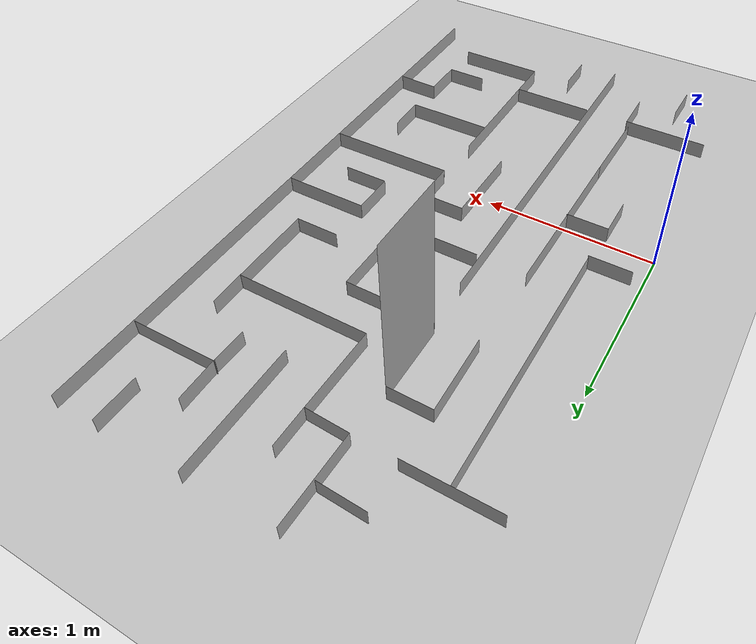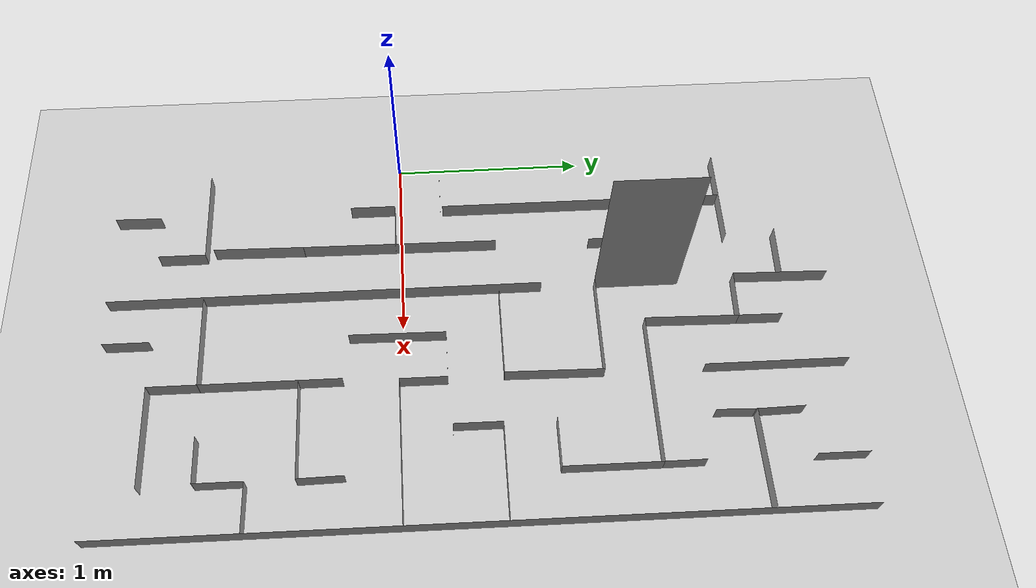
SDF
<sdf version="1.7">
 <world name="default">
  <model name="ground_plane">
   <static>1</static>
   <link name="link">
    <collision name="collision">
     <geometry><plane><normal>0 0 1</normal><size>100 100</size></plane></geometry>
     <surface>
      <contact><collide_bitmask>65535</collide_bitmask></contact>
      <friction><ode><mu>100</mu><mu2>50</mu2></ode></friction>
     </surface>
    </collision>
    <visual name="visual">
     <cast_shadows>0</cast_shadows>
     <geometry><plane><normal>0 0 1</normal><size>100 100</size></plane></geometry>
     <material>
      <script><uri>file://media/materials/scripts/gazebo.material</uri><name>Gazebo/Grey</name></script>
     </material>
    </visual>
   </link>
  </model>
  <model name="Untitled">
   <pose>-0.693629 0.396873 0 0 -0 0</pose>
   <link name="Wall_101">
    <collision name="Wall_101_Collision">
     <geometry><box><size>0.501251 0 0.1</size></box></geometry>
     <pose>0 0 0.05 0 -0 0</pose>
    </collision>
    <visual name="Wall_101_Visual">
     <pose>0 0 0.05 0 -0 0</pose>
     <geometry><box><size>0.501251 0 0.1</size></box></geometry>
     <material>
      <script><uri>file://media/materials/scripts/gazebo.material</uri><name>Gazebo/Grey</name></script>
      <ambient>1 1 1 1</ambient>
     </material>
     <meta><layer>0</layer></meta>
    </visual>
    <pose>1.50388 1.61431 0 0 -0 -1.58876</pose>
   </link>
   <link name="Wall_102">
    <collision name="Wall_102_Collision">
     <geometry><box><size>0.251161 0 0.1</size></box></geometry>
     <pose>0 0 0.05 0 -0 0</pose>
    </collision>
    <visual name="Wall_102_Visual">
     <pose>0 0 0.05 0 -0 0</pose>
     <geometry><box><size>0.251161 0 0.1</size></box></geometry>
     <material>
      <script><uri>file://media/materials/scripts/gazebo.material</uri><name>Gazebo/Grey</name></script>
      <ambient>1 1 1 1</ambient>
     </material>
     <meta><layer>0</layer></meta>
    </visual>
    <pose>1.62488 1.35931 0 0 -0 -0.035841</pose>
   </link>
   <link name="Wall_103">
    <collision name="Wall_103_Collision">
     <geometry><box><size>0.492751 0 0.1</size></box></geometry>
     <pose>0 0 0.05 0 -0 0</pose>
    </collision>
    <visual name="Wall_103_Visual">
     <pose>0 0 0.05 0 -0 0</pose>
     <geometry><box><size>0.492751 0 0.1</size></box></geometry>
     <material>
      <script><uri>file://media/materials/scripts/gazebo.material</uri><name>Gazebo/Grey</name></script>
      <ambient>1 1 1 1</ambient>
     </material>
     <meta><layer>0</layer></meta>
    </visual>
    <pose>1.74588 1.10831 0 0 -0 -1.58905</pose>
   </link>
   <link name="Wall_104">
    <collision name="Wall_104_Collision">
     <geometry><box><size>0.786968 0 0.1</size></box></geometry>
     <pose>0 0 0.05 0 -0 0</pose>
    </collision>
    <visual name="Wall_104_Visual">
     <pose>0 0 0.05 0 -0 0</pose>
     <geometry><box><size>0.786968 0 0.1</size></box></geometry>
     <material>
      <script><uri>file://media/materials/scripts/gazebo.material</uri><name>Gazebo/Grey</name></script>
      <ambient>1 1 1 1</ambient>
     </material>
     <meta><layer>0</layer></meta>
    </visual>
    <pose>2.13488 0.861812 0 0 -0 0</pose>
   </link>
   <link name="Wall_105">
    <collision name="Wall_105_Collision">
     <geometry><box><size>0.501171 0 0.1</size></box></geometry>
     <pose>0 0 0.05 0 -0 0</pose>
    </collision>
    <visual name="Wall_105_Visual">
     <pose>0 0 0.05 0 -0 0</pose>
     <geometry><box><size>0.501171 0 0.1</size></box></geometry>
     <material>
      <script><uri>file://media/materials/scripts/gazebo.material</uri><name>Gazebo/Grey</name></script>
      <ambient>1 1 1 1</ambient>
     </material>
     <meta><layer>0</layer></meta>
    </visual>
    <pose>2.52838 0.611312 0 0 -0 -1.5708</pose>
   </link>
   <link name="Wall_106">
    <collision name="Wall_106_Collision">
     <geometry><box><size>0.259429 0 0.1</size></box></geometry>
     <pose>0 0 0.05 0 -0 0</pose>
    </collision>
    <visual name="Wall_106_Visual">
     <pose>0 0 0.05 0 -0 0</pose>
     <geometry><box><size>0.259429 0 0.1</size></box></geometry>
     <material>
      <script><uri>file://media/materials/scripts/gazebo.material</uri><name>Gazebo/Grey</name></script>
      <ambient>1 1 1 1</ambient>
     </material>
     <meta><layer>0</layer></meta>
    </visual>
    <pose>2.39888 0.360812 0 0 -0 3.14159</pose>
   </link>
   <link name="Wall_108">
    <collision name="Wall_108_Collision">
     <geometry><box><size>0.208821 0 0.1</size></box></geometry>
     <pose>0 0 0.05 0 -0 0</pose>
    </collision>
    <visual name="Wall_108_Visual">
     <pose>0 0 0.05 0 -0 0</pose>
     <geometry><box><size>0.208821 0 0.1</size></box></geometry>
     <material>
      <script><uri>file://media/materials/scripts/gazebo.material</uri><name>Gazebo/Grey</name></script>
      <ambient>1 1 1 1</ambient>
     </material>
     <meta><layer>0</layer></meta>
    </visual>
    <pose>2.52788 0.966312 0 0 -0 1.57558</pose>
   </link>
   <link name="Wall_110">
    <collision name="Wall_110_Collision">
     <geometry><box><size>0.227103 0 0.1</size></box></geometry>
     <pose>0 0 0.05 0 -0 0</pose>
    </collision>
    <visual name="Wall_110_Visual">
     <pose>0 0 0.05 0 -0 0</pose>
     <geometry><box><size>0.227103 0 0.1</size></box></geometry>
     <material>
      <script><uri>file://media/materials/scripts/gazebo.material</uri><name>Gazebo/Grey</name></script>
      <ambient>1 1 1 1</ambient>
     </material>
     <meta><layer>0</layer></meta>
    </visual>
    <pose>1.75138 1.46831 0 0 -0 1.56199</pose>
   </link>
   <link name="Wall_113">
    <collision name="Wall_113_Collision">
     <geometry><box><size>0.268095 0 0.1</size></box></geometry>
     <pose>0 0 0.05 0 -0 0</pose>
    </collision>
    <visual name="Wall_113_Visual">
     <pose>0 0 0.05 0 -0 0</pose>
     <geometry><box><size>0.268095 0 0.1</size></box></geometry>
     <material>
      <script><uri>file://media/materials/scripts/gazebo.material</uri><name>Gazebo/Grey</name></script>
      <ambient>1 1 1 1</ambient>
     </material>
     <meta><layer>0</layer></meta>
    </visual>
    <pose>1.36538 1.62631 0 0 -0 3.10802</pose>
   </link>
   <link name="Wall_134">
    <collision name="Wall_134_Collision">
     <geometry><box><size>0.51708 0 0.1</size></box></geometry>
     <pose>0 0 0.05 0 -0 0</pose>
    </collision>
    <visual name="Wall_134_Visual">
     <pose>0 0 0.05 0 -0 0</pose>
     <geometry><box><size>0.51708 0 0.1</size></box></geometry>
     <material>
      <script><uri>file://media/materials/scripts/gazebo.material</uri><name>Gazebo/Grey</name></script>
      <ambient>1 1 1 1</ambient>
     </material>
     <meta><layer>0</layer></meta>
    </visual>
    <pose>0.994881 1.36381 0 0 -0 0</pose>
   </link>
   <link name="Wall_136">
    <collision name="Wall_136_Collision">
     <geometry><box><size>1.52347 0 0.1</size></box></geometry>
     <pose>0 0 0.05 0 -0 0</pose>
    </collision>
    <visual name="Wall_136_Visual">
     <pose>0 0 0.05 0 -0 0</pose>
     <geometry><box><size>1.52347 0 0.1</size></box></geometry>
     <material>
      <script><uri>file://media/materials/scripts/gazebo.material</uri><name>Gazebo/Grey</name></script>
      <ambient>1 1 1 1</ambient>
     </material>
     <meta><layer>0</layer></meta>
    </visual>
    <pose>0.997381 0.596312 0 0 -0 -1.5708</pose>
   </link>
   <link name="Wall_140">
    <collision name="Wall_140_Collision">
     <geometry><box><size>0.250222 0 0.1</size></box></geometry>
     <pose>0 0 0.05 0 -0 0</pose>
    </collision>
    <visual name="Wall_140_Visual">
     <pose>0 0 0.05 0 -0 0</pose>
     <geometry><box><size>0.250222 0 0.1</size></box></geometry>
     <material>
      <script><uri>file://media/materials/scripts/gazebo.material</uri><name>Gazebo/Grey</name></script>
      <ambient>1 1 1 1</ambient>
     </material>
     <meta><layer>0</layer></meta>
    </visual>
    <pose>0.878381 -0.177188 0 0 -0 3.14159</pose>
   </link>
   <link name="Wall_155">
    <collision name="Wall_155_Collision">
     <geometry><box><size>0.481513 0 0.1</size></box></geometry>
     <pose>0 0 0.05 0 -0 0</pose>
    </collision>
    <visual name="Wall_155_Visual">
     <pose>0 0 0.05 0 -0 0</pose>
     <geometry><box><size>0.481513 0 0.1</size></box></geometry>
     <material>
      <script><uri>file://media/materials/scripts/gazebo.material</uri><name>Gazebo/Grey</name></script>
      <ambient>1 1 1 1</ambient>
     </material>
     <meta><layer>0</layer></meta>
    </visual>
    <pose>1.22088 -1.16369 0 0 -0 -1.58535</pose>
   </link>
   <link name="Wall_160">
    <collision name="Wall_160_Collision">
     <geometry><box><size>0.241 0 0.1</size></box></geometry>
     <pose>0 0 0.05 0 -0 0</pose>
    </collision>
    <visual name="Wall_160_Visual">
     <pose>0 0 0.05 0 -0 0</pose>
     <geometry><box><size>0.241 0 0.1</size></box></geometry>
     <material>
      <script><uri>file://media/materials/scripts/gazebo.material</uri><name>Gazebo/Grey</name></script>
      <ambient>1 1 1 1</ambient>
     </material>
     <meta><layer>0</layer></meta>
    </visual>
    <pose>0.984381 -0.547688 0 0 -0 1.5708</pose>
   </link>
   <link name="Wall_161">
    <collision name="Wall_161_Collision">
     <geometry><box><size>0.247734 0 0.1</size></box></geometry>
     <pose>0 0 0.05 0 -0 0</pose>
    </collision>
    <visual name="Wall_161_Visual">
     <pose>0 0 0.05 0 -0 0</pose>
     <geometry><box><size>0.247734 0 0.1</size></box></geometry>
     <material>
      <script><uri>file://media/materials/scripts/gazebo.material</uri><name>Gazebo/Grey</name></script>
      <ambient>1 1 1 1</ambient>
     </material>
     <meta><layer>0</layer></meta>
    </visual>
    <pose>1.10838 -0.427188 0 0 -0 0</pose>
   </link>
   <link name="Wall_163">
    <collision name="Wall_163_Collision">
     <geometry><box><size>1.03736 0 0.1</size></box></geometry>
     <pose>0 0 0.05 0 -0 0</pose>
    </collision>
    <visual name="Wall_163_Visual">
     <pose>0 0 0.05 0 -0 0</pose>
     <geometry><box><size>1.03736 0 0.1</size></box></geometry>
     <material>
      <script><uri>file://media/materials/scripts/gazebo.material</uri><name>Gazebo/Grey</name></script>
      <ambient>1 1 1 1</ambient>
     </material>
     <meta><layer>0</layer></meta>
    </visual>
    <pose>1.22838 -0.404688 0 0 -0 1.56308</pose>
   </link>
   <link name="Wall_165">
    <collision name="Wall_165_Collision">
     <geometry><box><size>0.458792 0 0.1</size></box></geometry>
     <pose>0 0 0.05 0 -0 0</pose>
    </collision>
    <visual name="Wall_165_Visual">
     <pose>0 0 0.05 0 -0 0</pose>
     <geometry><box><size>0.458792 0 0.1</size></box></geometry>
     <material>
      <script><uri>file://media/materials/scripts/gazebo.material</uri><name>Gazebo/Grey</name></script>
      <ambient>1 1 1 1</ambient>
     </material>
     <meta><layer>0</layer></meta>
    </visual>
    <pose>1.24338 0.847312 0 0 -0 1.58822</pose>
   </link>
   <link name="Wall_166">
    <collision name="Wall_166_Collision">
     <geometry><box><size>0.256 0 0.1</size></box></geometry>
     <pose>0 0 0.05 0 -0 0</pose>
    </collision>
    <visual name="Wall_166_Visual">
     <pose>0 0 0.05 0 -0 0</pose>
     <geometry><box><size>0.256 0 0.1</size></box></geometry>
     <material>
      <script><uri>file://media/materials/scripts/gazebo.material</uri><name>Gazebo/Grey</name></script>
      <ambient>1 1 1 1</ambient>
     </material>
     <meta><layer>0</layer></meta>
    </visual>
    <pose>1.36738 1.07681 0 0 -0 0</pose>
   </link>
   <link name="Wall_167">
    <collision name="Wall_167_Collision">
     <geometry><box><size>0.451398 0 1</size></box></geometry>
     <pose>0 0 0.5 0 -0 0</pose>
    </collision>
    <visual name="Wall_167_Visual">
     <pose>0 0 0.5 0 -0 0</pose>
     <geometry><box><size>0.451398 0 1</size></box></geometry>
     <material>
      <script><uri>file://media/materials/scripts/gazebo.material</uri><name>Gazebo/Grey</name></script>
      <ambient>1 1 1 1</ambient>
     </material>
     <meta><layer>0</layer></meta>
    </visual>
    <pose>1.49538 0.851312 0 0 -0 -1.5708</pose>
   </link>
   <link name="Wall_168">
    <collision name="Wall_168_Collision">
     <geometry><box><size>0.526202 0 0.1</size></box></geometry>
     <pose>0 0 0.05 0 -0 0</pose>
    </collision>
    <visual name="Wall_168_Visual">
     <pose>0 0 0.05 0 -0 0</pose>
     <geometry><box><size>0.526202 0 0.1</size></box></geometry>
     <material>
      <script><uri>file://media/materials/scripts/gazebo.material</uri><name>Gazebo/Grey</name></script>
      <ambient>1 1 1 1</ambient>
     </material>
     <meta><layer>0</layer></meta>
    </visual>
    <pose>1.75838 0.625812 0 0 -0 0</pose>
   </link>
   <link name="Wall_169">
    <collision name="Wall_169_Collision">
     <geometry><box><size>0.511724 0 0.1</size></box></geometry>
     <pose>0 0 0.05 0 -0 0</pose>
    </collision>
    <visual name="Wall_169_Visual">
     <pose>0 0 0.05 0 -0 0</pose>
     <geometry><box><size>0.511724 0 0.1</size></box></geometry>
     <material>
      <script><uri>file://media/materials/scripts/gazebo.material</uri><name>Gazebo/Grey</name></script>
      <ambient>1 1 1 1</ambient>
     </material>
     <meta><layer>0</layer></meta>
    </visual>
    <pose>2.01788 0.369812 0 0 -0 -1.58447</pose>
   </link>
   <link name="Wall_170">
    <collision name="Wall_170_Collision">
     <geometry><box><size>0.489035 0 0.1</size></box></geometry>
     <pose>0 0 0.05 0 -0 0</pose>
    </collision>
    <visual name="Wall_170_Visual">
     <pose>0 0 0.05 0 -0 0</pose>
     <geometry><box><size>0.489035 0 0.1</size></box></geometry>
     <material>
      <script><uri>file://media/materials/scripts/gazebo.material</uri><name>Gazebo/Grey</name></script>
      <ambient>1 1 1 1</ambient>
     </material>
     <meta><layer>0</layer></meta>
    </visual>
    <pose>1.76988 0.113812 0 0 -0 3.14159</pose>
   </link>
   <link name="Wall_2">
    <collision name="Wall_2_Collision">
     <geometry><box><size>3.825 0 0.1</size></box></geometry>
     <pose>0 0 0.05 0 -0 0</pose>
    </collision>
    <visual name="Wall_2_Visual">
     <pose>0 0 0.05 0 -0 0</pose>
     <geometry><box><size>3.825 0 0.1</size></box></geometry>
     <material>
      <script><uri>file://media/materials/scripts/gazebo.material</uri><name>Gazebo/Grey</name></script>
      <ambient>1 1 1 1</ambient>
     </material>
     <meta><layer>0</layer></meta>
    </visual>
    <pose>2.78476 -0.036406 0 0 -0 1.5708</pose>
   </link>
   <link name="Wall_53">
    <collision name="Wall_53_Collision">
     <geometry><box><size>0.504706 0 0.1</size></box></geometry>
     <pose>0 0 0.05 0 -0 0</pose>
    </collision>
    <visual name="Wall_53_Visual">
     <pose>0 0 0.05 0 -0 0</pose>
     <geometry><box><size>0.504706 0 0.1</size></box></geometry>
     <material>
      <script><uri>file://media/materials/scripts/gazebo.material</uri><name>Gazebo/Grey</name></script>
      <ambient>1 1 1 1</ambient>
     </material>
     <meta><layer>0</layer></meta>
    </visual>
    <pose>0.992881 -1.44719 0 0 -0 0</pose>
   </link>
   <link name="Wall_54">
    <collision name="Wall_54_Collision">
     <geometry><box><size>0.251915 0 0.1</size></box></geometry>
     <pose>0 0 0.05 0 -0 0</pose>
    </collision>
    <visual name="Wall_54_Visual">
     <pose>0 0 0.05 0 -0 0</pose>
     <geometry><box><size>0.251915 0 0.1</size></box></geometry>
     <material>
      <script><uri>file://media/materials/scripts/gazebo.material</uri><name>Gazebo/Grey</name></script>
      <ambient>1 1 1 1</ambient>
     </material>
     <meta><layer>0</layer></meta>
    </visual>
    <pose>1.24538 -1.57319 0 0 -0 -1.5708</pose>
   </link>
   <link name="Wall_56">
    <collision name="Wall_56_Collision">
     <geometry><box><size>0.247843 0 0.1</size></box></geometry>
     <pose>0 0 0.05 0 -0 0</pose>
    </collision>
    <visual name="Wall_56_Visual">
     <pose>0 0 0.05 0 -0 0</pose>
     <geometry><box><size>0.247843 0 0.1</size></box></geometry>
     <material>
      <script><uri>file://media/materials/scripts/gazebo.material</uri><name>Gazebo/Grey</name></script>
      <ambient>1 1 1 1</ambient>
     </material>
     <meta><layer>0</layer></meta>
    </visual>
    <pose>0.999381 -1.82719 0 0 -0 1.55467</pose>
   </link>
   <link name="Wall_58">
    <collision name="Wall_58_Collision">
     <geometry><box><size>2.29158 0 0.1</size></box></geometry>
     <pose>0 0 0.05 0 -0 0</pose>
    </collision>
    <visual name="Wall_58_Visual">
     <pose>0 0 0.05 0 -0 0</pose>
     <geometry><box><size>2.29158 0 0.1</size></box></geometry>
     <material>
      <script><uri>file://media/materials/scripts/gazebo.material</uri><name>Gazebo/Grey</name></script>
      <ambient>1 1 1 1</ambient>
     </material>
     <meta><layer>0</layer></meta>
    </visual>
    <pose>1.50688 -0.805188 0 0 -0 1.57298</pose>
   </link>
   <link name="Wall_60">
    <collision name="Wall_60_Collision">
     <geometry><box><size>0.241834 0 0.1</size></box></geometry>
     <pose>0 0 0.05 0 -0 0</pose>
    </collision>
    <visual name="Wall_60_Visual">
     <pose>0 0 0.05 0 -0 0</pose>
     <geometry><box><size>0.241834 0 0.1</size></box></geometry>
     <material>
      <script><uri>file://media/materials/scripts/gazebo.material</uri><name>Gazebo/Grey</name></script>
      <ambient>1 1 1 1</ambient>
     </material>
     <meta><layer>0</layer></meta>
    </visual>
    <pose>1.75738 -1.82219 0 0 -0 1.5708</pose>
   </link>
   <link name="Wall_62">
    <collision name="Wall_62_Collision">
     <geometry><box><size>0.494714 0 0.1</size></box></geometry>
     <pose>0 0 0.05 0 -0 0</pose>
    </collision>
    <visual name="Wall_62_Visual">
     <pose>0 0 0.05 0 -0 0</pose>
     <geometry><box><size>0.494714 0 0.1</size></box></geometry>
     <material>
      <script><uri>file://media/materials/scripts/gazebo.material</uri><name>Gazebo/Grey</name></script>
      <ambient>1 1 1 1</ambient>
     </material>
     <meta><layer>0</layer></meta>
    </visual>
    <pose>1.76188 -1.43919 0 0 -0 0</pose>
   </link>
   <link name="Wall_68">
    <collision name="Wall_68_Collision">
     <geometry><box><size>0.257 0 0.1</size></box></geometry>
     <pose>0 0 0.05 0 -0 0</pose>
    </collision>
    <visual name="Wall_68_Visual">
     <pose>0 0 0.05 0 -0 0</pose>
     <geometry><box><size>0.257 0 0.1</size></box></geometry>
     <material>
      <script><uri>file://media/materials/scripts/gazebo.material</uri><name>Gazebo/Grey</name></script>
      <ambient>1 1 1 1</ambient>
     </material>
     <meta><layer>0</layer></meta>
    </visual>
    <pose>2.00938 -1.56769 0 0 -0 -1.5708</pose>
   </link>
   <link name="Wall_69">
    <collision name="Wall_69_Collision">
     <geometry><box><size>0.528689 0 0.1</size></box></geometry>
     <pose>0 0 0.05 0 -0 0</pose>
    </collision>
    <visual name="Wall_69_Visual">
     <pose>0 0 0.05 0 -0 0</pose>
     <geometry><box><size>0.528689 0 0.1</size></box></geometry>
     <material>
      <script><uri>file://media/materials/scripts/gazebo.material</uri><name>Gazebo/Grey</name></script>
      <ambient>1 1 1 1</ambient>
     </material>
     <meta><layer>0</layer></meta>
    </visual>
    <pose>2.27388 -1.69619 0 0 -0 0</pose>
   </link>
   <link name="Wall_71">
    <collision name="Wall_71_Collision">
     <geometry><box><size>0.731516 0 0.1</size></box></geometry>
     <pose>0 0 0.05 0 -0 0</pose>
    </collision>
    <visual name="Wall_71_Visual">
     <pose>0 0 0.05 0 -0 0</pose>
     <geometry><box><size>0.731516 0 0.1</size></box></geometry>
     <material>
      <script><uri>file://media/materials/scripts/gazebo.material</uri><name>Gazebo/Grey</name></script>
      <ambient>1 1 1 1</ambient>
     </material>
     <meta><layer>0</layer></meta>
    </visual>
    <pose>2.00938 -1.07319 0 0 -0 1.5708</pose>
   </link>
   <link name="Wall_73">
    <collision name="Wall_73_Collision">
     <geometry><box><size>0.252245 0 0.1</size></box></geometry>
     <pose>0 0 0.05 0 -0 0</pose>
    </collision>
    <visual name="Wall_73_Visual">
     <pose>0 0 0.05 0 -0 0</pose>
     <geometry><box><size>0.252245 0 0.1</size></box></geometry>
     <material>
      <script><uri>file://media/materials/scripts/gazebo.material</uri><name>Gazebo/Grey</name></script>
      <ambient>1 1 1 1</ambient>
     </material>
     <meta><layer>0</layer></meta>
    </visual>
    <pose>2.65438 -1.17969 0 0 -0 3.12175</pose>
   </link>
   <link name="Wall_74">
    <collision name="Wall_74_Collision">
     <geometry><box><size>0.252263 0 0.1</size></box></geometry>
     <pose>0 0 0.05 0 -0 0</pose>
    </collision>
    <visual name="Wall_74_Visual">
     <pose>0 0 0.05 0 -0 0</pose>
     <geometry><box><size>0.252263 0 0.1</size></box></geometry>
     <material>
      <script><uri>file://media/materials/scripts/gazebo.material</uri><name>Gazebo/Grey</name></script>
      <ambient>1 1 1 1</ambient>
     </material>
     <meta><layer>0</layer></meta>
    </visual>
    <pose>2.52838 -1.30319 0 0 -0 -1.5708</pose>
   </link>
   <link name="Wall_75">
    <collision name="Wall_75_Collision">
     <geometry><box><size>0.242439 0 0.1</size></box></geometry>
     <pose>0 0 0.05 0 -0 0</pose>
    </collision>
    <visual name="Wall_75_Visual">
     <pose>0 0 0.05 0 -0 0</pose>
     <geometry><box><size>0.242439 0 0.1</size></box></geometry>
     <material>
      <script><uri>file://media/materials/scripts/gazebo.material</uri><name>Gazebo/Grey</name></script>
      <ambient>1 1 1 1</ambient>
     </material>
     <meta><layer>0</layer></meta>
    </visual>
    <pose>2.40738 -1.42919 0 0 -0 3.14159</pose>
   </link>
   <link name="Wall_78">
    <collision name="Wall_78_Collision">
     <geometry><box><size>0.514 0 0.1</size></box></geometry>
     <pose>0 0 0.05 0 -0 0</pose>
    </collision>
    <visual name="Wall_78_Visual">
     <pose>0 0 0.05 0 -0 0</pose>
     <geometry><box><size>0.514 0 0.1</size></box></geometry>
     <material>
      <script><uri>file://media/materials/scripts/gazebo.material</uri><name>Gazebo/Grey</name></script>
      <ambient>1 1 1 1</ambient>
     </material>
     <meta><layer>0</layer></meta>
    </visual>
    <pose>2.27138 -0.930188 0 0 -0 0</pose>
   </link>
   <link name="Wall_79">
    <collision name="Wall_79_Collision">
     <geometry><box><size>0.237403 0 0.1</size></box></geometry>
     <pose>0 0 0.05 0 -0 0</pose>
    </collision>
    <visual name="Wall_79_Visual">
     <pose>0 0 0.05 0 -0 0</pose>
     <geometry><box><size>0.237403 0 0.1</size></box></geometry>
     <material>
      <script><uri>file://media/materials/scripts/gazebo.material</uri><name>Gazebo/Grey</name></script>
      <ambient>1 1 1 1</ambient>
     </material>
     <meta><layer>0</layer></meta>
    </visual>
    <pose>2.52588 -0.811688 0 0 -0 1.59189</pose>
   </link>
   <link name="Wall_81">
    <collision name="Wall_81_Collision">
     <geometry><box><size>0.75647 0 0.1</size></box></geometry>
     <pose>0 0 0.05 0 -0 0</pose>
    </collision>
    <visual name="Wall_81_Visual">
     <pose>0 0 0.05 0 -0 0</pose>
     <geometry><box><size>0.75647 0 0.1</size></box></geometry>
     <material>
      <script><uri>file://media/materials/scripts/gazebo.material</uri><name>Gazebo/Grey</name></script>
      <ambient>1 1 1 1</ambient>
     </material>
     <meta><layer>0</layer></meta>
    </visual>
    <pose>2.40238 -0.418688 0 0 -0 -3.13498</pose>
   </link>
   <link name="Wall_82">
    <collision name="Wall_82_Collision">
     <geometry><box><size>0.247 0 0.1</size></box></geometry>
     <pose>0 0 0.05 0 -0 0</pose>
    </collision>
    <visual name="Wall_82_Visual">
     <pose>0 0 0.05 0 -0 0</pose>
     <geometry><box><size>0.247 0 0.1</size></box></geometry>
     <material>
      <script><uri>file://media/materials/scripts/gazebo.material</uri><name>Gazebo/Grey</name></script>
      <ambient>1 1 1 1</ambient>
     </material>
     <meta><layer>0</layer></meta>
    </visual>
    <pose>2.02438 -0.297688 0 0 -0 1.5708</pose>
   </link>
   <link name="Wall_83">
    <collision name="Wall_83_Collision">
     <geometry><box><size>0.253 0 0.1</size></box></geometry>
     <pose>0 0 0.05 0 -0 0</pose>
    </collision>
    <visual name="Wall_83_Visual">
     <pose>0 0 0.05 0 -0 0</pose>
     <geometry><box><size>0.253 0 0.1</size></box></geometry>
     <material>
      <script><uri>file://media/materials/scripts/gazebo.material</uri><name>Gazebo/Grey</name></script>
      <ambient>1 1 1 1</ambient>
     </material>
     <meta><layer>0</layer></meta>
    </visual>
    <pose>1.89788 -0.174188 0 0 -0 3.14159</pose>
   </link>
   <link name="Wall_84">
    <collision name="Wall_84_Collision">
     <geometry><box><size>0.503842 0 0.1</size></box></geometry>
     <pose>0 0 0.05 0 -0 0</pose>
    </collision>
    <visual name="Wall_84_Visual">
     <pose>0 0 0.05 0 -0 0</pose>
     <geometry><box><size>0.503842 0 0.1</size></box></geometry>
     <material>
      <script><uri>file://media/materials/scripts/gazebo.material</uri><name>Gazebo/Grey</name></script>
      <ambient>1 1 1 1</ambient>
     </material>
     <meta><layer>0</layer></meta>
    </visual>
    <pose>1.76888 -0.426188 0 0 -0 -1.58072</pose>
   </link>
   <link name="Wall_86">
    <collision name="Wall_86_Collision">
     <geometry><box><size>0.499 0 0.1</size></box></geometry>
     <pose>0 0 0.05 0 -0 0</pose>
    </collision>
    <visual name="Wall_86_Visual">
     <pose>0 0 0.05 0 -0 0</pose>
     <geometry><box><size>0.499 0 0.1</size></box></geometry>
     <material>
      <script><uri>file://media/materials/scripts/gazebo.material</uri><name>Gazebo/Grey</name></script>
      <ambient>1 1 1 1</ambient>
     </material>
     <meta><layer>0</layer></meta>
    </visual>
    <pose>2.53088 0.092812 0 0 -0 3.14159</pose>
   </link>
   <link name="Wall_87">
    <collision name="Wall_87_Collision">
     <geometry><box><size>0.251734 0 0.1</size></box></geometry>
     <pose>0 0 0.05 0 -0 0</pose>
    </collision>
    <visual name="Wall_87_Visual">
     <pose>0 0 0.05 0 -0 0</pose>
     <geometry><box><size>0.251734 0 0.1</size></box></geometry>
     <material>
      <script><uri>file://media/materials/scripts/gazebo.material</uri><name>Gazebo/Grey</name></script>
      <ambient>1 1 1 1</ambient>
     </material>
     <meta><layer>0</layer></meta>
    </visual>
    <pose>2.28138 -0.033188 0 0 -0 -1.5708</pose>
   </link>
   <link name="Wall_88">
    <collision name="Wall_88_Collision">
     <geometry><box><size>0.266577 0 0.1</size></box></geometry>
     <pose>0 0 0.05 0 -0 0</pose>
    </collision>
    <visual name="Wall_88_Visual">
     <pose>0 0 0.05 0 -0 0</pose>
     <geometry><box><size>0.266577 0 0.1</size></box></geometry>
     <material>
      <script><uri>file://media/materials/scripts/gazebo.material</uri><name>Gazebo/Grey</name></script>
      <ambient>1 1 1 1</ambient>
     </material>
     <meta><layer>0</layer></meta>
    </visual>
    <pose>2.41488 -0.159188 0 0 -0 0</pose>
   </link>
   <link name="Wall_91">
    <collision name="Wall_91_Collision">
     <geometry><box><size>0.261171 0 0.1</size></box></geometry>
     <pose>0 0 0.05 0 -0 0</pose>
    </collision>
    <visual name="Wall_91_Visual">
     <pose>0 0 0.05 0 -0 0</pose>
     <geometry><box><size>0.261171 0 0.1</size></box></geometry>
     <material>
      <script><uri>file://media/materials/scripts/gazebo.material</uri><name>Gazebo/Grey</name></script>
      <ambient>1 1 1 1</ambient>
     </material>
     <meta><layer>0</layer></meta>
    </visual>
    <pose>2.52538 1.74431 0 0 -0 -1.5708</pose>
   </link>
   <link name="Wall_93">
    <collision name="Wall_93_Collision">
     <geometry><box><size>0.510374 0 0.1</size></box></geometry>
     <pose>0 0 0.05 0 -0 0</pose>
    </collision>
    <visual name="Wall_93_Visual">
     <pose>0 0 0.05 0 -0 0</pose>
     <geometry><box><size>0.510374 0 0.1</size></box></geometry>
     <material>
      <script><uri>file://media/materials/scripts/gazebo.material</uri><name>Gazebo/Grey</name></script>
      <ambient>1 1 1 1</ambient>
     </material>
     <meta><layer>0</layer></meta>
    </visual>
    <pose>2.52538 1.36181 0 0 -0 -3.12983</pose>
   </link>
   <link name="Wall_95">
    <collision name="Wall_95_Collision">
     <geometry><box><size>0.249795 0 0.1</size></box></geometry>
     <pose>0 0 0.05 0 -0 0</pose>
    </collision>
    <visual name="Wall_95_Visual">
     <pose>0 0 0.05 0 -0 0</pose>
     <geometry><box><size>0.249795 0 0.1</size></box></geometry>
     <material>
      <script><uri>file://media/materials/scripts/gazebo.material</uri><name>Gazebo/Grey</name></script>
      <ambient>1 1 1 1</ambient>
     </material>
     <meta><layer>0</layer></meta>
    </visual>
    <pose>2.27438 1.47681 0 0 -0 1.59479</pose>
   </link>
   <link name="Wall_97">
    <collision name="Wall_97_Collision">
     <geometry><box><size>0.199494 0 0.1</size></box></geometry>
     <pose>0 0 0.05 0 -0 0</pose>
    </collision>
    <visual name="Wall_97_Visual">
     <pose>0 0 0.05 0 -0 0</pose>
     <geometry><box><size>0.199494 0 0.1</size></box></geometry>
     <material>
      <script><uri>file://media/materials/scripts/gazebo.material</uri><name>Gazebo/Grey</name></script>
      <ambient>1 1 1 1</ambient>
     </material>
     <meta><layer>0</layer></meta>
    </visual>
    <pose>2.27438 1.25231 0 0 -0 -1.60094</pose>
   </link>
   <link name="Wall_99">
    <collision name="Wall_99_Collision">
     <geometry><box><size>0.738783 0 0.1</size></box></geometry>
     <pose>0 0 0.05 0 -0 0</pose>
    </collision>
    <visual name="Wall_99_Visual">
     <pose>0 0 0.05 0 -0 0</pose>
     <geometry><box><size>0.738783 0 0.1</size></box></geometry>
     <material>
      <script><uri>file://media/materials/scripts/gazebo.material</uri><name>Gazebo/Grey</name></script>
      <ambient>1 1 1 1</ambient>
     </material>
     <meta><layer>0</layer></meta>
    </visual>
    <pose>2.02038 1.50631 0 0 -0 -1.5708</pose>
   </link>
   <static>1</static>
  </model>
 </world>
</sdf>
